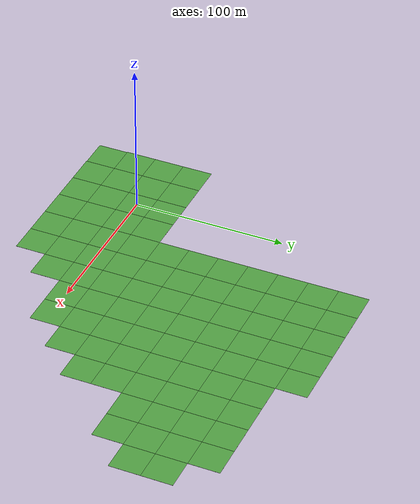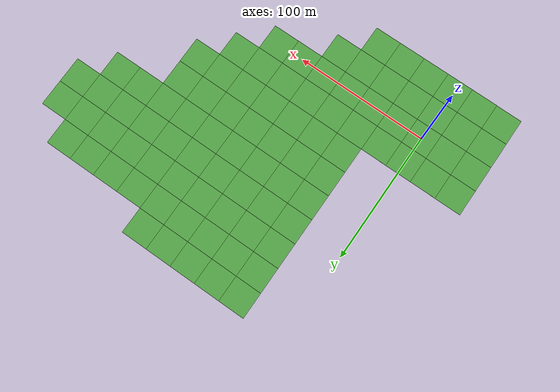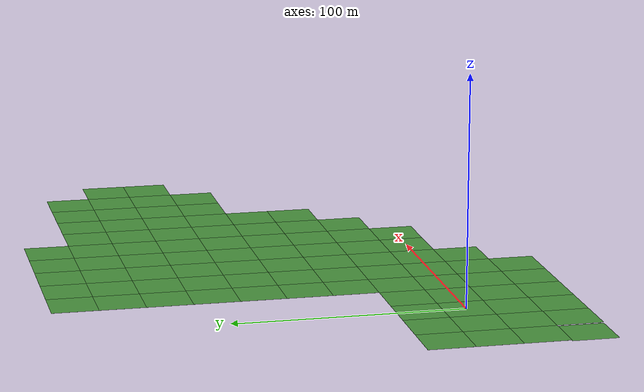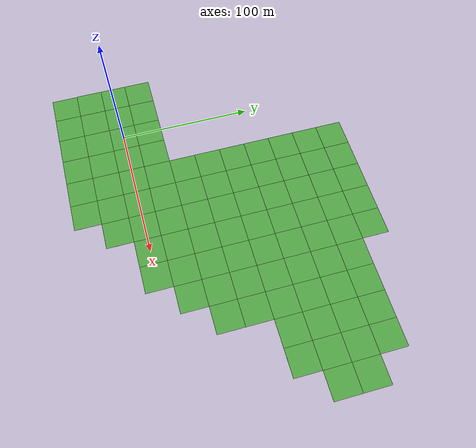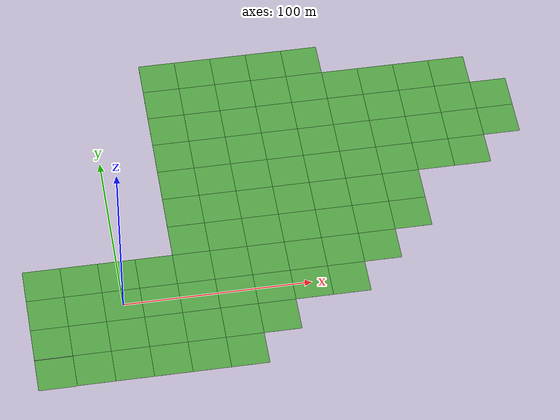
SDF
<sdf version="1.8">
 <world name="follow_road_harmonic">
  <physics name="4ms" type="ignored">
   <max_step_size>0.004</max_step_size>
   <real_time_factor>1.0</real_time_factor>
  </physics>
  <plugin filename="gz-sim-physics-system" name="gz::sim::systems::Physics"/>
  <plugin filename="gz-sim-user-commands-system" name="gz::sim::systems::UserCommands"/>
  <plugin filename="gz-sim-scene-broadcaster-system" name="gz::sim::systems::SceneBroadcaster"/>
  <plugin filename="gz-sim-sensors-system" name="gz::sim::systems::Sensors">
   <render_engine>ogre2</render_engine>
  </plugin>
  <light type="directional" name="sun">
   <pose>0 0 10 0 0 0</pose>
   <diffuse>0.8 0.8 0.8 1</diffuse>
   <specular>0.2 0.2 0.2 1</specular>
   <attenuation>
    <range>1000</range>
    <constant>0.9</constant>
    <linear>0.01</linear>
    <quadratic>0.001</quadratic>
   </attenuation>
   <direction>-0.5 0.1 -0.9</direction>
  </light>
  <include><uri>model://grass_plane</uri><name>grass_plane</name><pose>0 0 -0.001 0 0 0</pose></include>
  <include><uri>model://road_plane</uri><name>road_plane</name><pose>-20 0 0 0 0 0</pose></include>
  <include>
   <uri>model://road_curve</uri>
   <name>road_curve</name>
   <pose>-19.128223419189453 -6.8325963020324707 0 0 0 2.0420399331135197</pose>
  </include>
  <include>
   <uri>model://road_plane</uri>
   <name>road_plane_1</name>
   <pose>-14.0817 -11.5282 0 0 0 0.95207399999999998</pose>
  </include>
  <include>
   <uri>model://road_plane</uri>
   <name>road_plane_2</name>
   <pose>-5.9459776878356916 -17.320466995239258 0 0 0 0.95207395533950367</pose>
  </include>
  <include>
   <uri>model://road_curve</uri>
   <name>road_curve_0</name>
   <pose>0.14164115488529147 -20.581552505493164 0 0 0 2.9917700031401813</pose>
  </include>
  <include>
   <uri>model://road_curve</uri>
   <name>road_curve_1</name>
   <pose>4.1792788505554208 -21.100765228271481 0 0 0 -0.16342002852905516</pose>
  </include>
  <include>
   <uri>model://road_plane</uri>
   <name>road_plane_3</name>
   <pose>10.21527099609375 -24.437944412231445 0 0 0 -2.202900012738445</pose>
  </include>
  <include>
   <uri>model://road_curve</uri>
   <name>road_curve_2</name>
   <pose>16.223600387573239 -27.780799865722653 0 0 0 2.9730700001345052</pose>
  </include>
  <include>
   <uri>model://road_curve</uri>
   <name>road_curve_3</name>
   <pose>19.776954650878906 -26.706022262573242 0 0 0 -2.3829599949628224</pose>
  </include>
  <include>
   <uri>model://road_curve</uri>
   <name>road_curve_4</name>
   <pose>21.017391204833984 -23.230445861816406 0 0 0 -1.4487100328069633</pose>
  </include>
  <include>
   <uri>model://road_plane</uri>
   <name>road_plane_4</name>
   <pose>17.954458236694336 -17.02301025390625 0 0 0 0.58389300612600548</pose>
  </include>
  <include>
   <uri>model://road_curve</uri>
   <name>road_curve_5</name>
   <pose>14.925982475280762 -10.838279724121094 0 0 0 1.6777900079117787</pose>
  </include>
  <include>
   <uri>model://road_plane</uri>
   <name>road_plane_5</name>
   <pose>16.516273498535156 -4.1151680946350098 0 0 0 -0.35735699209187988</pose>
  </include>
  <include>
   <uri>model://road_curve</uri>
   <name>road_curve_6</name>
   <pose>18.102605819702148 2.611170768737793 0 0 0 -1.4624300425145729</pose>
  </include>
  <include>
   <uri>model://road_curve</uri>
   <name>road_curve_7</name>
   <pose>16.092544555664062 5.7186846733093262 0 0 0 -0.52887699027007007</pose>
  </include>
  <include>
   <uri>model://road_curve</uri>
   <name>road_curve_8</name>
   <pose>12.658302307128906 7.5311212539672852 0 0 0 2.6473999899781404</pose>
  </include>
  <include>
   <uri>model://road_curve</uri>
   <name>road_curve_14</name>
   <pose>3.3998198509216309 15.474347114562988 0 0 0 -0.72206896531390119</pose>
  </include>
  <include>
   <uri>model://road_curve</uri>
   <name>road_curve_15</name>
   <pose>-0.12906567752361298 16.466999053955078 0 0 0 0.18520300174408241</pose>
  </include>
  <include>
   <uri>model://road_curve</uri>
   <name>road_curve_9</name>
   <pose>-19.122169494628906 6.8502402305603027 0 0 0 1.0991300287569881</pose>
  </include>
  <include>
   <uri>model://road_curve</uri>
   <name>road_curve_12</name>
   <pose>-16.12800407409668 9.0331172943115234 0 0 0 0.16141699844184379</pose>
  </include>
  <include>
   <uri>model://road_curve</uri>
   <name>road_curve_16</name>
   <pose>-12.077943801879883 9.586822509765625 0 0 0 -2.9699500006083168</pose>
  </include>
  <include>
   <uri>model://road_plane</uri>
   <name>road_plane_0</name>
   <pose>-6.1061697006225586 13.010586738586426 0 0 0 2.2191100224937821</pose>
  </include>
  <include>
   <uri>model://road_plane</uri>
   <name>road_plane_6</name>
   <pose>7.3916501998901367 11.8665771484375 0 0 0 0.81320396213978929</pose>
  </include>
 </world>
</sdf>

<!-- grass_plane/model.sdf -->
<sdf version='1.4'>
  <model name='grass_plane'>
    <static>true</static>
    <link name='link'>
      <collision name='collision'>
        <geometry>
          <plane>
            <normal>0 0 1</normal>
            <size>500 500</size>
          </plane>
        </geometry>
        <surface>
          <friction>
            <ode>
              <mu>0.5</mu>
              <mu2>.5</mu2>
            </ode>
          </friction>
        </surface>
      </collision>

      <visual name='visual_0'>
        <pose>-40 -40 0 0 0 0</pose>

        <cast_shadows>false</cast_shadows>
        <geometry>
          <plane>
            <normal>0 0 1</normal>
            <size>20 20</size>
          </plane>
        </geometry>
        <material>
          <script>
            <uri>model://../model_source/models/grass_plane/materials/scripts</uri>
            <uri>model://../model_source/models/grass_plane/materials/textures</uri>
            <name>vrc/grass</name>
          </script>
        </material>
      </visual>

      <visual name='visual_1'>
        <pose>-20 -40 0 0 0 0</pose>

        <cast_shadows>false</cast_shadows>
        <geometry>
          <plane>
            <normal>0 0 1</normal>
            <size>20 20</size>
          </plane>
        </geometry>
        <material>
          <script>
            <uri>model://../model_source/models/grass_plane/materials/scripts</uri>
            <uri>model://../model_source/models/grass_plane/materials/textures</uri>
            <name>vrc/grass</name>
          </script>
        </material>
      </visual>

      <visual name='visual_2'>
        <pose>0 -40 0 0 0 0</pose>

        <cast_shadows>false</cast_shadows>
        <geometry>
          <plane>
            <normal>0 0 1</normal>
            <size>20 20</size>
          </plane>
        </geometry>
        <material>
          <script>
            <uri>model://../model_source/models/grass_plane/materials/scripts</uri>
            <uri>model://../model_source/models/grass_plane/materials/textures</uri>
            <name>vrc/grass</name>
          </script>
        </material>
      </visual>

      <visual name='visual_3'>
        <pose>20 -40 0 0 0 0</pose>

        <cast_shadows>false</cast_shadows>
        <geometry>
          <plane>
            <normal>0 0 1</normal>
            <size>20 20</size>
          </plane>
        </geometry>
        <material>
          <script>
            <uri>model://../model_source/models/grass_plane/materials/scripts</uri>
            <uri>model://../model_source/models/grass_plane/materials/textures</uri>
            <name>vrc/grass</name>
          </script>
        </material>
      </visual>

      <visual name='visual_4'>
        <pose>40 -40 0 0 0 0</pose>

        <cast_shadows>false</cast_shadows>
        <geometry>
          <plane>
            <normal>0 0 1</normal>
            <size>20 20</size>
          </plane>
        </geometry>
        <material>
          <script>
            <uri>model://../model_source/models/grass_plane/materials/scripts</uri>
            <uri>model://../model_source/models/grass_plane/materials/textures</uri>
            <name>vrc/grass</name>
          </script>
        </material>
      </visual>

      <visual name='visual_5'>
        <pose>60 -40 0 0 0 0</pose>

        <cast_shadows>false</cast_shadows>
        <geometry>
          <plane>
            <normal>0 0 1</normal>
            <size>20 20</size>
          </plane>
        </geometry>
        <material>
          <script>
            <uri>model://../model_source/models/grass_plane/materials/scripts</uri>
            <uri>model://../model_source/models/grass_plane/materials/textures</uri>
            <name>vrc/grass</name>
          </script>
        </material>
      </visual>

      <visual name='visual_6'>
        <pose>-40 -20 0 0 0 0</pose>

        <cast_shadows>false</cast_shadows>
        <geometry>
          <plane>
            <normal>0 0 1</normal>
            <size>20 20</size>
          </plane>
        </geometry>
        <material>
          <script>
            <uri>model://../model_source/models/grass_plane/materials/scripts</uri>
            <uri>model://../model_source/models/grass_plane/materials/textures</uri>
            <name>vrc/grass</name>
          </script>
        </material>
      </visual>

      <visual name='visual_7'>
        <pose>-20 -20 0 0 0 0</pose>

        <cast_shadows>false</cast_shadows>
        <geometry>
          <plane>
            <normal>0 0 1</normal>
            <size>20 20</size>
          </plane>
        </geometry>
        <material>
          <script>
            <uri>model://../model_source/models/grass_plane/materials/scripts</uri>
            <uri>model://../model_source/models/grass_plane/materials/textures</uri>
            <name>vrc/grass</name>
          </script>
        </material>
      </visual>

      <visual name='visual_8'>
        <pose>0 -20 0 0 0 0</pose>

        <cast_shadows>false</cast_shadows>
        <geometry>
          <plane>
            <normal>0 0 1</normal>
            <size>20 20</size>
          </plane>
        </geometry>
        <material>
          <script>
            <uri>model://../model_source/models/grass_plane/materials/scripts</uri>
            <uri>model://../model_source/models/grass_plane/materials/textures</uri>
            <name>vrc/grass</name>
          </script>
        </material>
      </visual>

      <visual name='visual_9'>
        <pose>20 -20 0 0 0 0</pose>

        <cast_shadows>false</cast_shadows>
        <geometry>
          <plane>
            <normal>0 0 1</normal>
            <size>20 20</size>
          </plane>
        </geometry>
        <material>
          <script>
            <uri>model://../model_source/models/grass_plane/materials/scripts</uri>
            <uri>model://../model_source/models/grass_plane/materials/textures</uri>
            <name>vrc/grass</name>
          </script>
        </material>
      </visual>

      <visual name='visual_10'>
        <pose>40 -20 0 0 0 0</pose>

        <cast_shadows>false</cast_shadows>
        <geometry>
          <plane>
            <normal>0 0 1</normal>
            <size>20 20</size>
          </plane>
        </geometry>
        <material>
          <script>
            <uri>model://../model_source/models/grass_plane/materials/scripts</uri>
            <uri>model://../model_source/models/grass_plane/materials/textures</uri>
            <name>vrc/grass</name>
          </script>
        </material>
      </visual>

      <visual name='visual_11'>
        <pose>60 -20 0 0 0 0</pose>

        <cast_shadows>false</cast_shadows>
        <geometry>
          <plane>
            <normal>0 0 1</normal>
            <size>20 20</size>
          </plane>
        </geometry>
        <material>
          <script>
            <uri>model://../model_source/models/grass_plane/materials/scripts</uri>
            <uri>model://../model_source/models/grass_plane/materials/textures</uri>
            <name>vrc/grass</name>
          </script>
        </material>
      </visual>

      <visual name='visual_12'>
        <pose>80 -20 0 0 0 0</pose>

        <cast_shadows>false</cast_shadows>
        <geometry>
          <plane>
            <normal>0 0 1</normal>
            <size>20 20</size>
          </plane>
        </geometry>
        <material>
          <script>
            <uri>model://../model_source/models/grass_plane/materials/scripts</uri>
            <uri>model://../model_source/models/grass_plane/materials/textures</uri>
            <name>vrc/grass</name>
          </script>
        </material>
      </visual>

      <visual name='visual_13'>
        <pose>-40 0 0 0 0 0</pose>

        <cast_shadows>false</cast_shadows>
        <geometry>
          <plane>
            <normal>0 0 1</normal>
            <size>20 20</size>
          </plane>
        </geometry>
        <material>
          <script>
            <uri>model://../model_source/models/grass_plane/materials/scripts</uri>
            <uri>model://../model_source/models/grass_plane/materials/textures</uri>
            <name>vrc/grass</name>
          </script>
        </material>
      </visual>

      <visual name='visual_14'>
        <pose>-20 0 0 0 0 0</pose>

        <cast_shadows>false</cast_shadows>
        <geometry>
          <plane>
            <normal>0 0 1</normal>
            <size>20 20</size>
          </plane>
        </geometry>
        <material>
          <script>
            <uri>model://../model_source/models/grass_plane/materials/scripts</uri>
            <uri>model://../model_source/models/grass_plane/materials/textures</uri>
            <name>vrc/grass</name>
          </script>
        </material>
      </visual>

      <visual name='visual_15'>
        <pose>0 0 0 0 0 0</pose>

        <cast_shadows>false</cast_shadows>
        <geometry>
          <plane>
            <normal>0 0 1</normal>
            <size>20 20</size>
          </plane>
        </geometry>
        <material>
          <script>
            <uri>model://../model_source/models/grass_plane/materials/scripts</uri>
            <uri>model://../model_source/models/grass_plane/materials/textures</uri>
            <name>vrc/grass</name>
          </script>
        </material>
      </visual>

      <visual name='visual_16'>
        <pose>20 0 0 0 0 0</pose>

        <cast_shadows>false</cast_shadows>
        <geometry>
          <plane>
            <normal>0 0 1</normal>
            <size>20 20</size>
          </plane>
        </geometry>
        <material>
          <script>
            <uri>model://../model_source/models/grass_plane/materials/scripts</uri>
            <uri>model://../model_source/models/grass_plane/materials/textures</uri>
            <name>vrc/grass</name>
          </script>
        </material>
      </visual>

      <visual name='visual_17'>
        <pose>40 0 0 0 0 0</pose>

        <cast_shadows>false</cast_shadows>
        <geometry>
          <plane>
            <normal>0 0 1</normal>
            <size>20 20</size>
          </plane>
        </geometry>
        <material>
          <script>
            <uri>model://../model_source/models/grass_plane/materials/scripts</uri>
            <uri>model://../model_source/models/grass_plane/materials/textures</uri>
            <name>vrc/grass</name>
          </script>
        </material>
      </visual>

      <visual name='visual_18'>
        <pose>60 0 0 0 0 0</pose>

        <cast_shadows>false</cast_shadows>
        <geometry>
          <plane>
            <normal>0 0 1</normal>
            <size>20 20</size>
          </plane>
        </geometry>
        <material>
          <script>
            <uri>model://../model_source/models/grass_plane/materials/scripts</uri>
            <uri>model://../model_source/models/grass_plane/materials/textures</uri>
            <name>vrc/grass</name>
          </script>
        </material>
      </visual>

      <visual name='visual_19'>
        <pose>80 0 0 0 0 0</pose>

        <cast_shadows>false</cast_shadows>
        <geometry>
          <plane>
            <normal>0 0 1</normal>
            <size>20 20</size>
          </plane>
        </geometry>
        <material>
          <script>
            <uri>model://../model_source/models/grass_plane/materials/scripts</uri>
            <uri>model://../model_source/models/grass_plane/materials/textures</uri>
            <name>vrc/grass</name>
          </script>
        </material>
      </visual>

      <visual name='visual_20'>
        <pose>100 0 0 0 0 0</pose>

        <cast_shadows>false</cast_shadows>
        <geometry>
          <plane>
            <normal>0 0 1</normal>
            <size>20 20</size>
          </plane>
        </geometry>
        <material>
          <script>
            <uri>model://../model_source/models/grass_plane/materials/scripts</uri>
            <uri>model://../model_source/models/grass_plane/materials/textures</uri>
            <name>vrc/grass</name>
          </script>
        </material>
      </visual>

      <visual name='visual_21'>
        <pose>120 0 0 0 0 0</pose>

        <cast_shadows>false</cast_shadows>
        <geometry>
          <plane>
            <normal>0 0 1</normal>
            <size>20 20</size>
          </plane>
        </geometry>
        <material>
          <script>
            <uri>model://../model_source/models/grass_plane/materials/scripts</uri>
            <uri>model://../model_source/models/grass_plane/materials/textures</uri>
            <name>vrc/grass</name>
          </script>
        </material>
      </visual>

      <visual name='visual_22'>
        <pose>-40 20 0 0 0 0</pose>

        <cast_shadows>false</cast_shadows>
        <geometry>
          <plane>
            <normal>0 0 1</normal>
            <size>20 20</size>
          </plane>
        </geometry>
        <material>
          <script>
            <uri>model://../model_source/models/grass_plane/materials/scripts</uri>
            <uri>model://../model_source/models/grass_plane/materials/textures</uri>
            <name>vrc/grass</name>
          </script>
        </material>
      </visual>

      <visual name='visual_23'>
        <pose>-20 20 0 0 0 0</pose>

        <cast_shadows>false</cast_shadows>
        <geometry>
          <plane>
            <normal>0 0 1</normal>
            <size>20 20</size>
          </plane>
        </geometry>
        <material>
          <script>
            <uri>model://../model_source/models/grass_plane/materials/scripts</uri>
            <uri>model://../model_source/models/grass_plane/materials/textures</uri>
            <name>vrc/grass</name>
          </script>
        </material>
      </visual>

      <visual name='visual_24'>
        <pose>0 20 0 0 0 0</pose>

        <cast_shadows>false</cast_shadows>
        <geometry>
          <plane>
            <normal>0 0 1</normal>
            <size>20 20</size>
          </plane>
        </geometry>
        <material>
          <script>
            <uri>model://../model_source/models/grass_plane/materials/scripts</uri>
            <uri>model://../model_source/models/grass_plane/materials/textures</uri>
            <name>vrc/grass</name>
          </script>
        </material>
      </visual>

      <visual name='visual_25'>
        <pose>20 20 0 0 0 0</pose>

        <cast_shadows>false</cast_shadows>
        <geometry>
          <plane>
            <normal>0 0 1</normal>
            <size>20 20</size>
          </plane>
        </geometry>
        <material>
          <script>
            <uri>model://../model_source/models/grass_plane/materials/scripts</uri>
            <uri>model://../model_source/models/grass_plane/materials/textures</uri>
            <name>vrc/grass</name>
          </script>
        </material>
      </visual>

      <visual name='visual_26'>
        <pose>40 20 0 0 0 0</pose>

        <cast_shadows>false</cast_shadows>
        <geometry>
          <plane>
            <normal>0 0 1</normal>
            <size>20 20</size>
          </plane>
        </geometry>
        <material>
          <script>
            <uri>model://../model_source/models/grass_plane/materials/scripts</uri>
            <uri>model://../model_source/models/grass_plane/materials/textures</uri>
            <name>vrc/grass</name>
          </script>
        </material>
      </visual>

      <visual name='visual_27'>
        <pose>60 20 0 0 0 0</pose>

        <cast_shadows>false</cast_shadows>
        <geometry>
          <plane>
            <normal>0 0 1</normal>
            <size>20 20</size>
          </plane>
        </geometry>
        <material>
          <script>
            <uri>model://../model_source/models/grass_plane/materials/scripts</uri>
            <uri>model://../model_source/models/grass_plane/materials/textures</uri>
            <name>vrc/grass</name>
          </script>
        </material>
      </visual>

      <visual name='visual_28'>
        <pose>80 20 0 0 0 0</pose>

        <cast_shadows>false</cast_shadows>
        <geometry>
          <plane>
            <normal>0 0 1</normal>
            <size>20 20</size>
          </plane>
        </geometry>
        <material>
          <script>
            <uri>model://../model_source/models/grass_plane/materials/scripts</uri>
            <uri>model://../model_source/models/grass_plane/materials/textures</uri>
            <name>vrc/grass</name>
          </script>
        </material>
      </visual>

      <visual name='visual_29'>
        <pose>100 20 0 0 0 0</pose>

        <cast_shadows>false</cast_shadows>
        <geometry>
          <plane>
            <normal>0 0 1</normal>
            <size>20 20</size>
          </plane>
        </geometry>
        <material>
          <script>
            <uri>model://../model_source/models/grass_plane/materials/scripts</uri>
            <uri>model://../model_source/models/grass_plane/materials/textures</uri>
            <name>vrc/grass</name>
          </script>
        </material>
      </visual>

      <visual name='visual_30'>
        <pose>120 20 0 0 0 0</pose>

        <cast_shadows>false</cast_shadows>
        <geometry>
          <plane>
            <normal>0 0 1</normal>
            <size>20 20</size>
          </plane>
        </geometry>
        <material>
          <script>
            <uri>model://../model_source/models/grass_plane/materials/scripts</uri>
            <uri>model://../model_source/models/grass_plane/materials/textures</uri>
            <name>vrc/grass</name>
          </script>
        </material>
      </visual>

      <visual name='visual_31'>
        <pose>140 20 0 0 0 0</pose>

        <cast_shadows>false</cast_shadows>
        <geometry>
          <plane>
            <normal>0 0 1</normal>
            <size>20 20</size>
          </plane>
        </geometry>
        <material>
          <script>
            <uri>model://../model_source/models/grass_plane/materials/scripts</uri>
            <uri>model://../model_source/models/grass_plane/materials/textures</uri>
            <name>vrc/grass</name>
          </script>
        </material>
      </visual>

      <visual name='visual_32'>
        <pose>40 40 0 0 0 0</pose>

        <cast_shadows>false</cast_shadows>
        <geometry>
          <plane>
            <normal>0 0 1</normal>
            <size>20 20</size>
          </plane>
        </geometry>
        <material>
          <script>
            <uri>model://../model_source/models/grass_plane/materials/scripts</uri>
            <uri>model://../model_source/models/grass_plane/materials/textures</uri>
            <name>vrc/grass</name>
          </script>
        </material>
      </visual>

      <visual name='visual_33'>
        <pose>60 40 0 0 0 0</pose>

        <cast_shadows>false</cast_shadows>
        <geometry>
          <plane>
            <normal>0 0 1</normal>
            <size>20 20</size>
          </plane>
        </geometry>
        <material>
          <script>
            <uri>model://../model_source/models/grass_plane/materials/scripts</uri>
            <uri>model://../model_source/models/grass_plane/materials/textures</uri>
            <name>vrc/grass</name>
          </script>
        </material>
      </visual>

      <visual name='visual_34'>
        <pose>80 40 0 0 0 0</pose>

        <cast_shadows>false</cast_shadows>
        <geometry>
          <plane>
            <normal>0 0 1</normal>
            <size>20 20</size>
          </plane>
        </geometry>
        <material>
          <script>
            <uri>model://../model_source/models/grass_plane/materials/scripts</uri>
            <uri>model://../model_source/models/grass_plane/materials/textures</uri>
            <name>vrc/grass</name>
          </script>
        </material>
      </visual>

      <visual name='visual_35'>
        <pose>100 40 0 0 0 0</pose>

        <cast_shadows>false</cast_shadows>
        <geometry>
          <plane>
            <normal>0 0 1</normal>
            <size>20 20</size>
          </plane>
        </geometry>
        <material>
          <script>
            <uri>model://../model_source/models/grass_plane/materials/scripts</uri>
            <uri>model://../model_source/models/grass_plane/materials/textures</uri>
            <name>vrc/grass</name>
          </script>
        </material>
      </visual>

      <visual name='visual_36'>
        <pose>120 40 0 0 0 0</pose>

        <cast_shadows>false</cast_shadows>
        <geometry>
          <plane>
            <normal>0 0 1</normal>
            <size>20 20</size>
          </plane>
        </geometry>
        <material>
          <script>
            <uri>model://../model_source/models/grass_plane/materials/scripts</uri>
            <uri>model://../model_source/models/grass_plane/materials/textures</uri>
            <name>vrc/grass</name>
          </script>
        </material>
      </visual>

      <visual name='visual_37'>
        <pose>140 40 0 0 0 0</pose>

        <cast_shadows>false</cast_shadows>
        <geometry>
          <plane>
            <normal>0 0 1</normal>
            <size>20 20</size>
          </plane>
        </geometry>
        <material>
          <script>
            <uri>model://../model_source/models/grass_plane/materials/scripts</uri>
            <uri>model://../model_source/models/grass_plane/materials/textures</uri>
            <name>vrc/grass</name>
          </script>
        </material>
      </visual>

      <visual name='visual_38'>
        <pose>160 40 0 0 0 0</pose>

        <cast_shadows>false</cast_shadows>
        <geometry>
          <plane>
            <normal>0 0 1</normal>
            <size>20 20</size>
          </plane>
        </geometry>
        <material>
          <script>
            <uri>model://../model_source/models/grass_plane/materials/scripts</uri>
            <uri>model://../model_source/models/grass_plane/materials/textures</uri>
            <name>vrc/grass</name>
          </script>
        </material>
      </visual>

      <visual name='visual_39'>
        <pose>40 60 0 0 0 0</pose>

        <cast_shadows>false</cast_shadows>
        <geometry>
          <plane>
            <normal>0 0 1</normal>
            <size>20 20</size>
          </plane>
        </geometry>
        <material>
          <script>
            <uri>model://../model_source/models/grass_plane/materials/scripts</uri>
            <uri>model://../model_source/models/grass_plane/materials/textures</uri>
            <name>vrc/grass</name>
          </script>
        </material>
      </visual>

      <visual name='visual_40'>
        <pose>60 60 0 0 0 0</pose>

        <cast_shadows>false</cast_shadows>
        <geometry>
          <plane>
            <normal>0 0 1</normal>
            <size>20 20</size>
          </plane>
        </geometry>
        <material>
          <script>
            <uri>model://../model_source/models/grass_plane/materials/scripts</uri>
            <uri>model://../model_source/models/grass_plane/materials/textures</uri>
            <name>vrc/grass</name>
          </script>
        </material>
      </visual>

      <visual name='visual_41'>
        <pose>80 60 0 0 0 0</pose>

        <cast_shadows>false</cast_shadows>
        <geometry>
          <plane>
            <normal>0 0 1</normal>
            <size>20 20</size>
          </plane>
        </geometry>
        <material>
          <script>
            <uri>model://../model_source/models/grass_plane/materials/scripts</uri>
            <uri>model://../model_source/models/grass_plane/materials/textures</uri>
            <name>vrc/grass</name>
          </script>
        </material>
      </visual>

      <visual name='visual_42'>
        <pose>100 60 0 0 0 0</pose>

        <cast_shadows>false</cast_shadows>
        <geometry>
          <plane>
            <normal>0 0 1</normal>
            <size>20 20</size>
          </plane>
        </geometry>
        <material>
          <script>
            <uri>model://../model_source/models/grass_plane/materials/scripts</uri>
            <uri>model://../model_source/models/grass_plane/materials/textures</uri>
            <name>vrc/grass</name>
          </script>
        </material>
      </visual>

      <visual name='visual_43'>
        <pose>120 60 0 0 0 0</pose>

        <cast_shadows>false</cast_shadows>
        <geometry>
          <plane>
            <normal>0 0 1</normal>
            <size>20 20</size>
          </plane>
        </geometry>
        <material>
          <script>
            <uri>model://../model_source/models/grass_plane/materials/scripts</uri>
            <uri>model://../model_source/models/grass_plane/materials/textures</uri>
            <name>vrc/grass</name>
          </script>
        </material>
      </visual>

      <visual name='visual_44'>
        <pose>140 60 0 0 0 0</pose>

        <cast_shadows>false</cast_shadows>
        <geometry>
          <plane>
            <normal>0 0 1</normal>
            <size>20 20</size>
          </plane>
        </geometry>
        <material>
          <script>
            <uri>model://../model_source/models/grass_plane/materials/scripts</uri>
            <uri>model://../model_source/models/grass_plane/materials/textures</uri>
            <name>vrc/grass</name>
          </script>
        </material>
      </visual>

      <visual name='visual_45'>
        <pose>160 60 0 0 0 0</pose>

        <cast_shadows>false</cast_shadows>
        <geometry>
          <plane>
            <normal>0 0 1</normal>
            <size>20 20</size>
          </plane>
        </geometry>
        <material>
          <script>
            <uri>model://../model_source/models/grass_plane/materials/scripts</uri>
            <uri>model://../model_source/models/grass_plane/materials/textures</uri>
            <name>vrc/grass</name>
          </script>
        </material>
      </visual>

      <visual name='visual_46'>
        <pose>40 80 0 0 0 0</pose>

        <cast_shadows>false</cast_shadows>
        <geometry>
          <plane>
            <normal>0 0 1</normal>
            <size>20 20</size>
          </plane>
        </geometry>
        <material>
          <script>
            <uri>model://../model_source/models/grass_plane/materials/scripts</uri>
            <uri>model://../model_source/models/grass_plane/materials/textures</uri>
            <name>vrc/grass</name>
          </script>
        </material>
      </visual>

      <visual name='visual_47'>
        <pose>60 80 0 0 0 0</pose>

        <cast_shadows>false</cast_shadows>
        <geometry>
          <plane>
            <normal>0 0 1</normal>
            <size>20 20</size>
          </plane>
        </geometry>
        <material>
          <script>
            <uri>model://../model_source/models/grass_plane/materials/scripts</uri>
            <uri>model://../model_source/models/grass_plane/materials/textures</uri>
            <name>vrc/grass</name>
          </script>
        </material>
      </visual>

      <visual name='visual_48'>
        <pose>80 80 0 0 0 0</pose>

        <cast_shadows>false</cast_shadows>
        <geometry>
          <plane>
            <normal>0 0 1</normal>
            <size>20 20</size>
          </plane>
        </geometry>
        <material>
          <script>
            <uri>model://../model_source/models/grass_plane/materials/scripts</uri>
            <uri>model://../model_source/models/grass_plane/materials/textures</uri>
            <name>vrc/grass</name>
          </script>
        </material>
      </visual>

      <visual name='visual_49'>
        <pose>100 80 0 0 0 0</pose>

        <cast_shadows>false</cast_shadows>
        <geometry>
          <plane>
            <normal>0 0 1</normal>
            <size>20 20</size>
          </plane>
        </geometry>
        <material>
          <script>
            <uri>model://../model_source/models/grass_plane/materials/scripts</uri>
            <uri>model://../model_source/models/grass_plane/materials/textures</uri>
            <name>vrc/grass</name>
          </script>
        </material>
      </visual>

      <visual name='visual_50'>
        <pose>120 80 0 0 0 0</pose>

        <cast_shadows>false</cast_shadows>
        <geometry>
          <plane>
            <normal>0 0 1</normal>
            <size>20 20</size>
          </plane>
        </geometry>
        <material>
          <script>
            <uri>model://../model_source/models/grass_plane/materials/scripts</uri>
            <uri>model://../model_source/models/grass_plane/materials/textures</uri>
            <name>vrc/grass</name>
          </script>
        </material>
      </visual>

      <visual name='visual_51'>
        <pose>140 80 0 0 0 0</pose>

        <cast_shadows>false</cast_shadows>
        <geometry>
          <plane>
            <normal>0 0 1</normal>
            <size>20 20</size>
          </plane>
        </geometry>
        <material>
          <script>
            <uri>model://../model_source/models/grass_plane/materials/scripts</uri>
            <uri>model://../model_source/models/grass_plane/materials/textures</uri>
            <name>vrc/grass</name>
          </script>
        </material>
      </visual>

      <visual name='visual_52'>
        <pose>160 80 0 0 0 0</pose>

        <cast_shadows>false</cast_shadows>
        <geometry>
          <plane>
            <normal>0 0 1</normal>
            <size>20 20</size>
          </plane>
        </geometry>
        <material>
          <script>
            <uri>model://../model_source/models/grass_plane/materials/scripts</uri>
            <uri>model://../model_source/models/grass_plane/materials/textures</uri>
            <name>vrc/grass</name>
          </script>
        </material>
      </visual>

      <visual name='visual_53'>
        <pose>180 80 0 0 0 0</pose>

        <cast_shadows>false</cast_shadows>
        <geometry>
          <plane>
            <normal>0 0 1</normal>
            <size>20 20</size>
          </plane>
        </geometry>
        <material>
          <script>
            <uri>model://../model_source/models/grass_plane/materials/scripts</uri>
            <uri>model://../model_source/models/grass_plane/materials/textures</uri>
            <name>vrc/grass</name>
          </script>
        </material>
      </visual>

      <visual name='visual_54'>
        <pose>200 80 0 0 0 0</pose>

        <cast_shadows>false</cast_shadows>
        <geometry>
          <plane>
            <normal>0 0 1</normal>
            <size>20 20</size>
          </plane>
        </geometry>
        <material>
          <script>
            <uri>model://../model_source/models/grass_plane/materials/scripts</uri>
            <uri>model://../model_source/models/grass_plane/materials/textures</uri>
            <name>vrc/grass</name>
          </script>
        </material>
      </visual>

      <visual name='visual_55'>
        <pose>40 100 0 0 0 0</pose>

        <cast_shadows>false</cast_shadows>
        <geometry>
          <plane>
            <normal>0 0 1</normal>
            <size>20 20</size>
          </plane>
        </geometry>
        <material>
          <script>
            <uri>model://../model_source/models/grass_plane/materials/scripts</uri>
            <uri>model://../model_source/models/grass_plane/materials/textures</uri>
            <name>vrc/grass</name>
          </script>
        </material>
      </visual>

      <visual name='visual_56'>
        <pose>60 100 0 0 0 0</pose>

        <cast_shadows>false</cast_shadows>
        <geometry>
          <plane>
            <normal>0 0 1</normal>
            <size>20 20</size>
          </plane>
        </geometry>
        <material>
          <script>
            <uri>model://../model_source/models/grass_plane/materials/scripts</uri>
            <uri>model://../model_source/models/grass_plane/materials/textures</uri>
            <name>vrc/grass</name>
          </script>
        </material>
      </visual>

      <visual name='visual_57'>
        <pose>80 100 0 0 0 0</pose>

        <cast_shadows>false</cast_shadows>
        <geometry>
          <plane>
            <normal>0 0 1</normal>
            <size>20 20</size>
          </plane>
        </geometry>
        <material>
          <script>
            <uri>model://../model_source/models/grass_plane/materials/scripts</uri>
            <uri>model://../model_source/models/grass_plane/materials/textures</uri>
            <name>vrc/grass</name>
          </script>
        </material>
      </visual>

      <visual name='visual_58'>
        <pose>100 100 0 0 0 0</pose>

        <cast_shadows>false</cast_shadows>
        <geometry>
          <plane>
            <normal>0 0 1</normal>
            <size>20 20</size>
          </plane>
        </geometry>
        <material>
          <script>
            <uri>model://../model_source/models/grass_plane/materials/scripts</uri>
            <uri>model://../model_source/models/grass_plane/materials/textures</uri>
            <name>vrc/grass</name>
          </script>
        </material>
      </visual>

      <visual name='visual_59'>
        <pose>120 100 0 0 0 0</pose>

        <cast_shadows>false</cast_shadows>
        <geometry>
          <plane>
            <normal>0 0 1</normal>
            <size>20 20</size>
          </plane>
        </geometry>
        <material>
          <script>
            <uri>model://../model_source/models/grass_plane/materials/scripts</uri>
            <uri>model://../model_source/models/grass_plane/materials/textures</uri>
            <name>vrc/grass</name>
          </script>
        </material>
      </visual>

      <visual name='visual_60'>
        <pose>140 100 0 0 0 0</pose>

        <cast_shadows>false</cast_shadows>
        <geometry>
          <plane>
            <normal>0 0 1</normal>
            <size>20 20</size>
          </plane>
        </geometry>
        <material>
          <script>
            <uri>model://../model_source/models/grass_plane/materials/scripts</uri>
            <uri>model://../model_source/models/grass_plane/materials/textures</uri>
            <name>vrc/grass</name>
          </script>
        </material>
      </visual>

      <visual name='visual_61'>
        <pose>160 100 0 0 0 0</pose>

        <cast_shadows>false</cast_shadows>
        <geometry>
          <plane>
            <normal>0 0 1</normal>
            <size>20 20</size>
          </plane>
        </geometry>
        <material>
          <script>
            <uri>model://../model_source/models/grass_plane/materials/scripts</uri>
            <uri>model://../model_source/models/grass_plane/materials/textures</uri>
            <name>vrc/grass</name>
          </script>
        </material>
      </visual>

      <visual name='visual_62'>
        <pose>180 100 0 0 0 0</pose>

        <cast_shadows>false</cast_shadows>
        <geometry>
          <plane>
            <normal>0 0 1</normal>
            <size>20 20</size>
          </plane>
        </geometry>
        <material>
          <script>
            <uri>model://../model_source/models/grass_plane/materials/scripts</uri>
            <uri>model://../model_source/models/grass_plane/materials/textures</uri>
            <name>vrc/grass</name>
          </script>
        </material>
      </visual>

      <visual name='visual_63'>
        <pose>200 100 0 0 0 0</pose>

        <cast_shadows>false</cast_shadows>
        <geometry>
          <plane>
            <normal>0 0 1</normal>
            <size>20 20</size>
          </plane>
        </geometry>
        <material>
          <script>
            <uri>model://../model_source/models/grass_plane/materials/scripts</uri>
            <uri>model://../model_source/models/grass_plane/materials/textures</uri>
            <name>vrc/grass</name>
          </script>
        </material>
      </visual>

      <visual name='visual_63a'>
        <pose>220 100 0 0 0 0</pose>

        <cast_shadows>false</cast_shadows>
        <geometry>
          <plane>
            <normal>0 0 1</normal>
            <size>20 20</size>
          </plane>
        </geometry>
        <material>
          <script>
            <uri>model://../model_source/models/grass_plane/materials/scripts</uri>
            <uri>model://../model_source/models/grass_plane/materials/textures</uri>
            <name>vrc/grass</name>
          </script>
        </material>
      </visual>

      <visual name='visual_64'>
        <pose>40 120 0 0 0 0</pose>

        <cast_shadows>false</cast_shadows>
        <geometry>
          <plane>
            <normal>0 0 1</normal>
            <size>20 20</size>
          </plane>
        </geometry>
        <material>
          <script>
            <uri>model://../model_source/models/grass_plane/materials/scripts</uri>
            <uri>model://../model_source/models/grass_plane/materials/textures</uri>
            <name>vrc/grass</name>
          </script>
        </material>
      </visual>

      <visual name='visual_65'>
        <pose>60 120 0 0 0 0</pose>

        <cast_shadows>false</cast_shadows>
        <geometry>
          <plane>
            <normal>0 0 1</normal>
            <size>20 20</size>
          </plane>
        </geometry>
        <material>
          <script>
            <uri>model://../model_source/models/grass_plane/materials/scripts</uri>
            <uri>model://../model_source/models/grass_plane/materials/textures</uri>
            <name>vrc/grass</name>
          </script>
        </material>
      </visual>

      <visual name='visual_66'>
        <pose>80 120 0 0 0 0</pose>

        <cast_shadows>false</cast_shadows>
        <geometry>
          <plane>
            <normal>0 0 1</normal>
            <size>20 20</size>
          </plane>
        </geometry>
        <material>
          <script>
            <uri>model://../model_source/models/grass_plane/materials/scripts</uri>
            <uri>model://../model_source/models/grass_plane/materials/textures</uri>
            <name>vrc/grass</name>
          </script>
        </material>
      </visual>

      <visual name='visual_67'>
        <pose>100 120 0 0 0 0</pose>

        <cast_shadows>false</cast_shadows>
        <geometry>
          <plane>
            <normal>0 0 1</normal>
            <size>20 20</size>
          </plane>
        </geometry>
        <material>
          <script>
            <uri>model://../model_source/models/grass_plane/materials/scripts</uri>
            <uri>model://../model_source/models/grass_plane/materials/textures</uri>
            <name>vrc/grass</name>
          </script>
        </material>
      </visual>

      <visual name='visual_68'>
        <pose>120 120 0 0 0 0</pose>

        <cast_shadows>false</cast_shadows>
        <geometry>
          <plane>
            <normal>0 0 1</normal>
            <size>20 20</size>
          </plane>
        </geometry>
        <material>
          <script>
            <uri>model://../model_source/models/grass_plane/materials/scripts</uri>
            <uri>model://../model_source/models/grass_plane/materials/textures</uri>
            <name>vrc/grass</name>
          </script>
        </material>
      </visual>

      <visual name='visual_69'>
        <pose>140 120 0 0 0 0</pose>

        <cast_shadows>false</cast_shadows>
        <geometry>
          <plane>
            <normal>0 0 1</normal>
            <size>20 20</size>
          </plane>
        </geometry>
        <material>
          <script>
            <uri>model://../model_source/models/grass_plane/materials/scripts</uri>
            <uri>model://../model_source/models/grass_plane/materials/textures</uri>
            <name>vrc/grass</name>
          </script>
        </material>
      </visual>

      <visual name='visual_70'>
        <pose>160 120 0 0 0 0</pose>

        <cast_shadows>false</cast_shadows>
        <geometry>
          <plane>
            <normal>0 0 1</normal>
            <size>20 20</size>
          </plane>
        </geometry>
        <material>
          <script>
            <uri>model://../model_source/models/grass_plane/materials/scripts</uri>
            <uri>model://../model_source/models/grass_plane/materials/textures</uri>
            <name>vrc/grass</name>
          </script>
        </material>
      </visual>

      <visual name='visual_71'>
        <pose>180 120 0 0 0 0</pose>

        <cast_shadows>false</cast_shadows>
        <geometry>
          <plane>
            <normal>0 0 1</normal>
            <size>20 20</size>
          </plane>
        </geometry>
        <material>
          <script>
            <uri>model://../model_source/models/grass_plane/materials/scripts</uri>
            <uri>model://../model_source/models/grass_plane/materials/textures</uri>
            <name>vrc/grass</name>
          </script>
        </material>
      </visual>

      <visual name='visual_72'>
        <pose>200 120 0 0 0 0</pose>

        <cast_shadows>false</cast_shadows>
        <geometry>
          <plane>
            <normal>0 0 1</normal>
            <size>20 20</size>
          </plane>
        </geometry>
        <material>
          <script>
            <uri>model://../model_source/models/grass_plane/materials/scripts</uri>
            <uri>model://../model_source/models/grass_plane/materials/textures</uri>
            <name>vrc/grass</name>
          </script>
        </material>
      </visual>

      <visual name='visual_72a'>
        <pose>220 120 0 0 0 0</pose>

        <cast_shadows>false</cast_shadows>
        <geometry>
          <plane>
            <normal>0 0 1</normal>
            <size>20 20</size>
          </plane>
        </geometry>
        <material>
          <script>
            <uri>model://../model_source/models/grass_plane/materials/scripts</uri>
            <uri>model://../model_source/models/grass_plane/materials/textures</uri>
            <name>vrc/grass</name>
          </script>
        </material>
      </visual>

      <visual name='visual_73'>
        <pose>40 140 0 0 0 0</pose>

        <cast_shadows>false</cast_shadows>
        <geometry>
          <plane>
            <normal>0 0 1</normal>
            <size>20 20</size>
          </plane>
        </geometry>
        <material>
          <script>
            <uri>model://../model_source/models/grass_plane/materials/scripts</uri>
            <uri>model://../model_source/models/grass_plane/materials/textures</uri>
            <name>vrc/grass</name>
          </script>
        </material>
      </visual>

      <visual name='visual_74'>
        <pose>60 140 0 0 0 0</pose>

        <cast_shadows>false</cast_shadows>
        <geometry>
          <plane>
            <normal>0 0 1</normal>
            <size>20 20</size>
          </plane>
        </geometry>
        <material>
          <script>
            <uri>model://../model_source/models/grass_plane/materials/scripts</uri>
            <uri>model://../model_source/models/grass_plane/materials/textures</uri>
            <name>vrc/grass</name>
          </script>
        </material>
      </visual>

      <visual name='visual_75'>
        <pose>80 140 0 0 0 0</pose>

        <cast_shadows>false</cast_shadows>
        <geometry>
          <plane>
            <normal>0 0 1</normal>
            <size>20 20</size>
          </plane>
        </geometry>
        <material>
          <script>
            <uri>model://../model_source/models/grass_plane/materials/scripts</uri>
            <uri>model://../model_source/models/grass_plane/materials/textures</uri>
            <name>vrc/grass</name>
          </script>
        </material>
      </visual>

      <visual name='visual_76'>
        <pose>100 140 0 0 0 0</pose>

        <cast_shadows>false</cast_shadows>
        <geometry>
          <plane>
            <normal>0 0 1</normal>
            <size>20 20</size>
          </plane>
        </geometry>
        <material>
          <script>
            <uri>model://../model_source/models/grass_plane/materials/scripts</uri>
            <uri>model://../model_source/models/grass_plane/materials/textures</uri>
            <name>vrc/grass</name>
          </script>
        </material>
      </visual>

      <visual name='visual_77'>
        <pose>120 140 0 0 0 0</pose>

        <cast_shadows>false</cast_shadows>
        <geometry>
          <plane>
            <normal>0 0 1</normal>
            <size>20 20</size>
          </plane>
        </geometry>
        <material>
          <script>
            <uri>model://../model_source/models/grass_plane/materials/scripts</uri>
            <uri>model://../model_source/models/grass_plane/materials/textures</uri>
            <name>vrc/grass</name>
          </script>
        </material>
      </visual>

      <visual name='visual_78'>
        <pose>140 140 0 0 0 0</pose>

        <cast_shadows>false</cast_shadows>
        <geometry>
          <plane>
            <normal>0 0 1</normal>
            <size>20 20</size>
          </plane>
        </geometry>
        <material>
          <script>
            <uri>model://../model_source/models/grass_plane/materials/scripts</uri>
            <uri>model://../model_source/models/grass_plane/materials/textures</uri>
            <name>vrc/grass</name>
          </script>
        </material>
      </visual>

      <visual name='visual_79'>
        <pose>160 140 0 0 0 0</pose>

        <cast_shadows>false</cast_shadows>
        <geometry>
          <plane>
            <normal>0 0 1</normal>
            <size>20 20</size>
          </plane>
        </geometry>
        <material>
          <script>
            <uri>model://../model_source/models/grass_plane/materials/scripts</uri>
            <uri>model://../model_source/models/grass_plane/materials/textures</uri>
            <name>vrc/grass</name>
          </script>
        </material>
      </visual>

      <visual name='visual_80'>
        <pose>180 140 0 0 0 0</pose>

        <cast_shadows>false</cast_shadows>
        <geometry>
          <plane>
            <normal>0 0 1</normal>
            <size>20 20</size>
          </plane>
        </geometry>
        <material>
          <script>
            <uri>model://../model_source/models/grass_plane/materials/scripts</uri>
            <uri>model://../model_source/models/grass_plane/materials/textures</uri>
            <name>vrc/grass</name>
          </script>
        </material>
      </visual>

      <visual name='visual_81'>
        <pose>200 140 0 0 0 0</pose>

        <cast_shadows>false</cast_shadows>
        <geometry>
          <plane>
            <normal>0 0 1</normal>
            <size>20 20</size>
          </plane>
        </geometry>
        <material>
          <script>
            <uri>model://../model_source/models/grass_plane/materials/scripts</uri>
            <uri>model://../model_source/models/grass_plane/materials/textures</uri>
            <name>vrc/grass</name>
          </script>
        </material>
      </visual>

      <visual name='visual_82'>
        <pose>40 160 0 0 0 0</pose>

        <cast_shadows>false</cast_shadows>
        <geometry>
          <plane>
            <normal>0 0 1</normal>
            <size>20 20</size>
          </plane>
        </geometry>
        <material>
          <script>
            <uri>model://../model_source/models/grass_plane/materials/scripts</uri>
            <uri>model://../model_source/models/grass_plane/materials/textures</uri>
            <name>vrc/grass</name>
          </script>
        </material>
      </visual>

      <visual name='visual_83'>
        <pose>60 160 0 0 0 0</pose>

        <cast_shadows>false</cast_shadows>
        <geometry>
          <plane>
            <normal>0 0 1</normal>
            <size>20 20</size>
          </plane>
        </geometry>
        <material>
          <script>
            <uri>model://../model_source/models/grass_plane/materials/scripts</uri>
            <uri>model://../model_source/models/grass_plane/materials/textures</uri>
            <name>vrc/grass</name>
          </script>
        </material>
      </visual>

      <visual name='visual_84'>
        <pose>80 160 0 0 0 0</pose>

        <cast_shadows>false</cast_shadows>
        <geometry>
          <plane>
            <normal>0 0 1</normal>
            <size>20 20</size>
          </plane>
        </geometry>
        <material>
          <script>
            <uri>model://../model_source/models/grass_plane/materials/scripts</uri>
            <uri>model://../model_source/models/grass_plane/materials/textures</uri>
            <name>vrc/grass</name>
          </script>
        </material>
      </visual>

      <visual name='visual_85'>
        <pose>100 160 0 0 0 0</pose>

        <cast_shadows>false</cast_shadows>
        <geometry>
          <plane>
            <normal>0 0 1</normal>
            <size>20 20</size>
          </plane>
        </geometry>
        <material>
          <script>
            <uri>model://../model_source/models/grass_plane/materials/scripts</uri>
            <uri>model://../model_source/models/grass_plane/materials/textures</uri>
            <name>vrc/grass</name>
          </script>
        </material>
      </visual>

      <visual name='visual_86'>
        <pose>120 160 0 0 0 0</pose>

        <cast_shadows>false</cast_shadows>
        <geometry>
          <plane>
            <normal>0 0 1</normal>
            <size>20 20</size>
          </plane>
        </geometry>
        <material>
          <script>
            <uri>model://../model_source/models/grass_plane/materials/scripts</uri>
            <uri>model://../model_source/models/grass_plane/materials/textures</uri>
            <name>vrc/grass</name>
          </script>
        </material>
      </visual>
    </link>
  </model>
</sdf>

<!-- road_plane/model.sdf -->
<sdf version='1.4'>
  <model name='road_plane'>
    <static>true</static>
    <link name='link'>
      <collision name='collision'>
        <pose>0 0 0 0 0 0</pose>
        <geometry>
          <plane>
            <normal>0 0 1</normal>
            <size>2 10</size>
          </plane>
        </geometry>
        <surface>
          <friction>
            <ode>
              <mu>0.5</mu>
              <mu2>.5</mu2>
            </ode>
          </friction>
        </surface>
      </collision>

      <visual name='visual_s10'>
        <pose>0 0 0 0 0 0</pose>
        <cast_shadows>false</cast_shadows>
        <geometry>
          <plane>
            <normal>0 0 1</normal>
            <size>2 10</size>
          </plane>
        </geometry>
        <material>
          <diffuse>1.0 1.0 1.0</diffuse>
          <specular>1.0 1.0 1.0</specular>
          <pbr>
            <metal>
              <albedo_map>materials/textures/Road_Albedo.png</albedo_map>
              <roughness_map>materials/textures/Road_Roughness.png</roughness_map>
            </metal>
          </pbr>
        </material>
      </visual>

    </link>
  </model>
</sdf>

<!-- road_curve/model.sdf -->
<sdf version='1.4'>
  <model name='road_curve'>
    <static>true</static>
    <link name='link'>
      <collision name='collision'>
        <pose>0 0 0 0 0 0</pose>
        <geometry>
          <plane>
            <normal>0 0 1</normal>
            <size>5 1.895</size>
          </plane>
        </geometry>
        <surface>
          <friction>
            <ode>
              <mu>0.5</mu>
              <mu2>.5</mu2>
            </ode>
          </friction>
        </surface>
      </collision>

      <visual name='visual_s10'>
        <pose>0 0 0 0 0 0</pose>
        <cast_shadows>false</cast_shadows>
        <geometry>
          <plane>
            <normal>0 0 1</normal>
            <size>5 1.895</size>
          </plane>
        </geometry>
        <material>
          <diffuse>1.0 1.0 1.0</diffuse>
          <specular>1.0 1.0 1.0</specular>
          <pbr>
            <metal>
              <albedo_map>materials/textures/Road_Albedorot.png</albedo_map>
              <roughness_map>materials/textures/Road_Roughnessrot.png</roughness_map>
            </metal>
          </pbr>
        </material>
      </visual>

    </link>
  </model>
</sdf>
